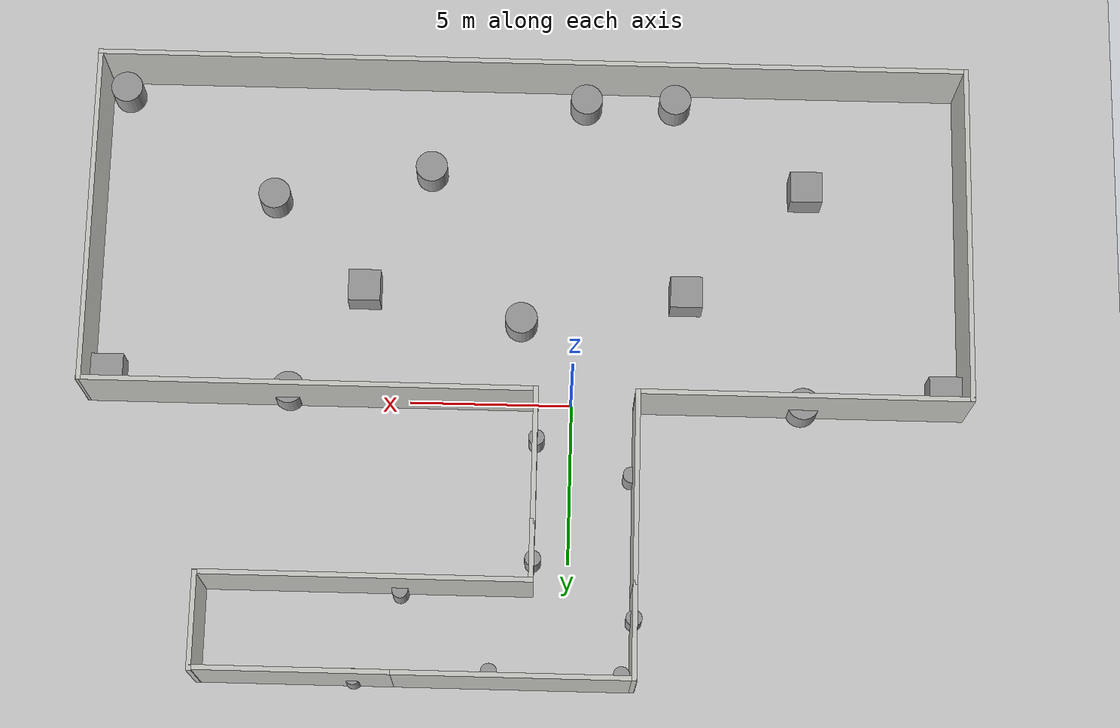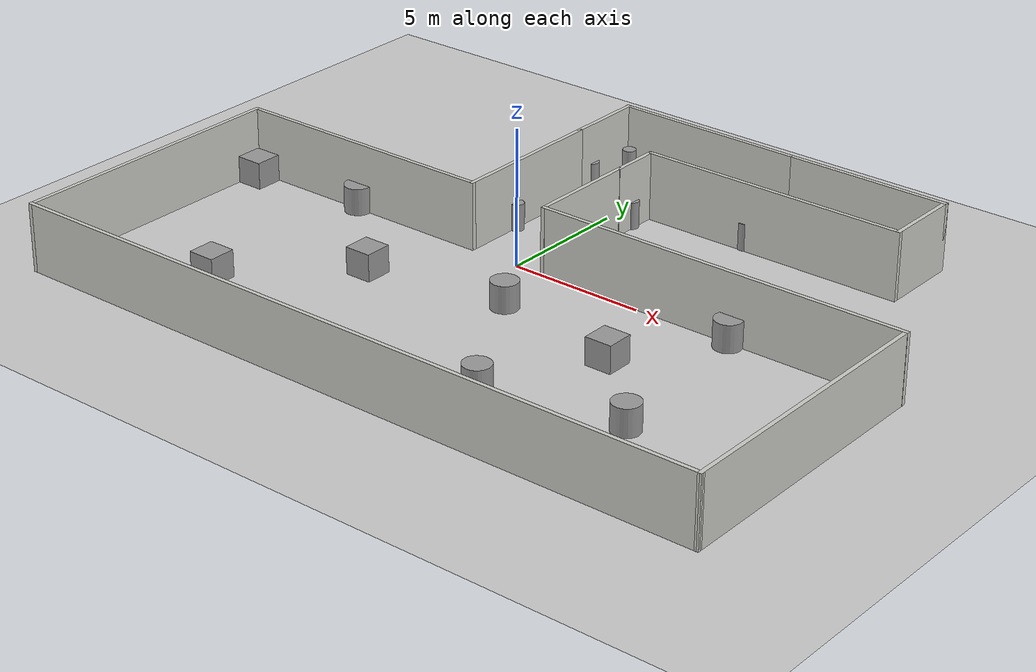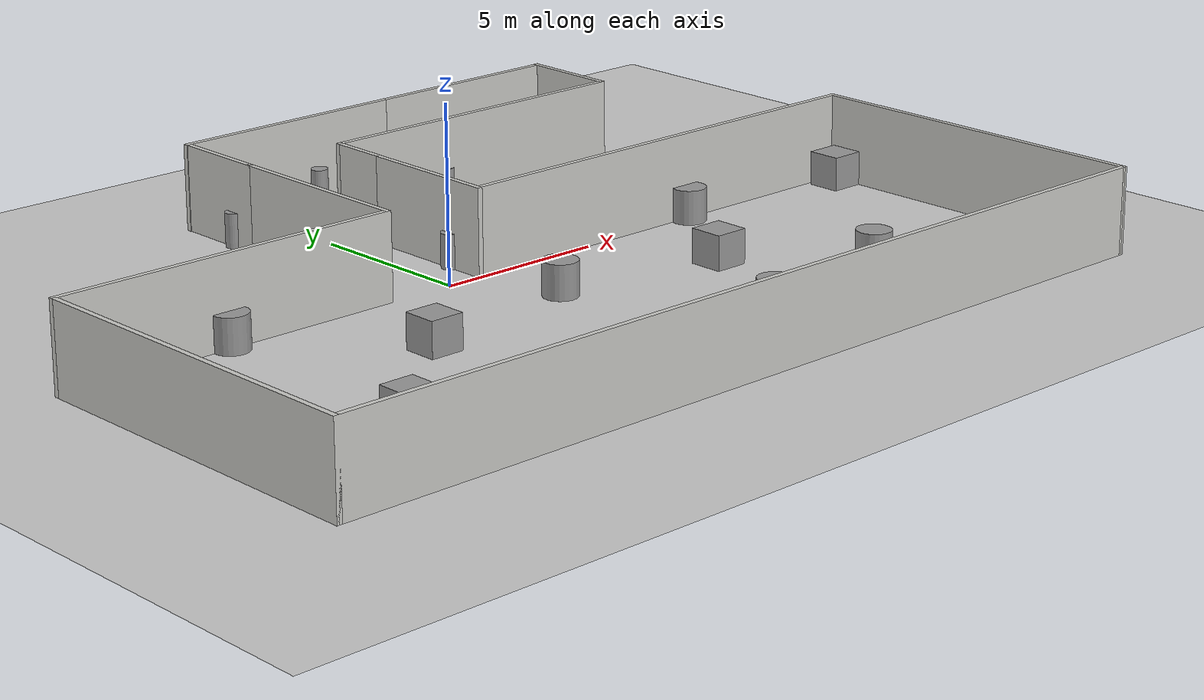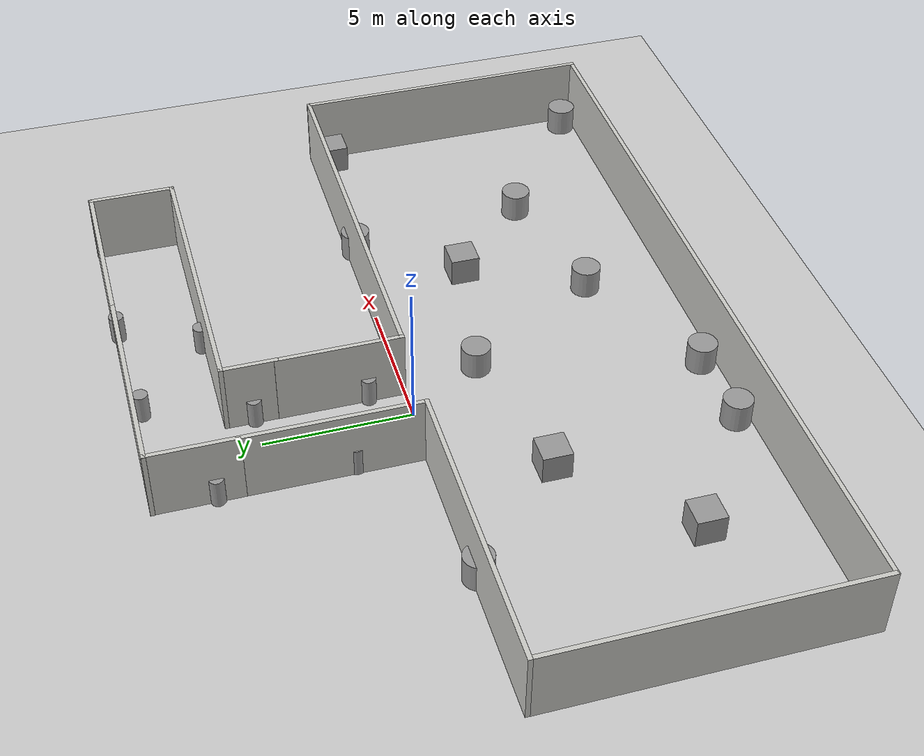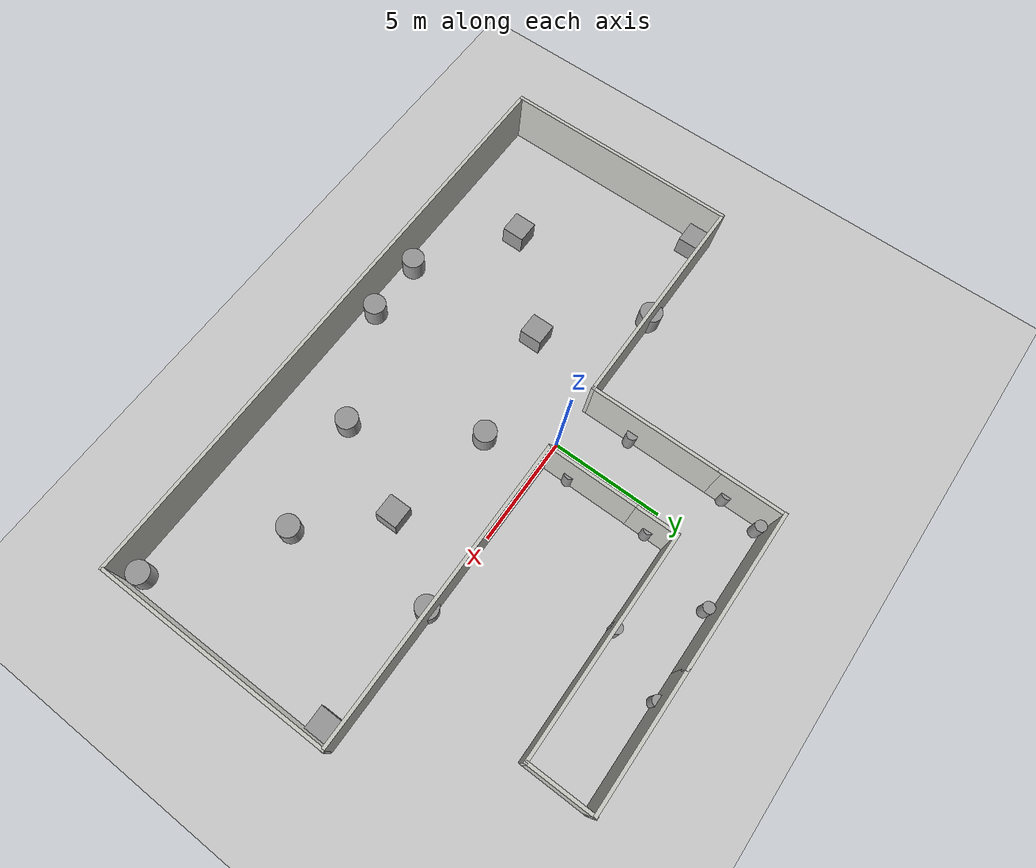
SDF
<sdf version="1.7">
 <world name="default">
  <light name="sun" type="directional">
   <pose>0 0 10 0 -0 0</pose>
   <diffuse>0.8 0.8 0.8 1</diffuse>
   <specular>0.2 0.2 0.2 1</specular>
   <attenuation>
    <range>1000</range>
    <constant>0.9</constant>
    <linear>0.01</linear>
    <quadratic>0.001</quadratic>
   </attenuation>
   <direction>-0.5 0.1 -0.9</direction>
   <spot><inner_angle>0</inner_angle><outer_angle>0</outer_angle><falloff>0</falloff></spot>
  </light>
  <model name="ground_plane">
   <static>1</static>
   <link name="link">
    <collision name="collision">
     <geometry><plane><normal>0 0 1</normal><size>100 100</size></plane></geometry>
     <surface><friction><ode><mu>100</mu><mu2>50</mu2></ode></friction></surface>
    </collision>
    <visual name="visual">
     <cast_shadows>0</cast_shadows>
     <geometry><plane><normal>0 0 1</normal><size>100 100</size></plane></geometry>
     <material>
      <script><uri>file://media/materials/scripts/gazebo.material</uri><name>Gazebo/Grey</name></script>
     </material>
    </visual>
   </link>
  </model>
  <gravity>0 0 -9.8</gravity>
  <magnetic_field>6e-06 2.3e-05 -4.2e-05</magnetic_field>
  <atmosphere type="adiabatic"/>
  <physics type="ode">
   <max_step_size>0.001</max_step_size>
   <real_time_factor>1</real_time_factor>
   <real_time_update_rate>1000</real_time_update_rate>
  </physics>
  <scene><ambient>0.4 0.4 0.4 1</ambient><background>0.7 0.7 0.7 1</background><shadows>1</shadows></scene>
  <audio><device>default</device></audio>
  <spherical_coordinates>
   <surface_model>EARTH_WGS84</surface_model>
   <latitude_deg>0</latitude_deg>
   <longitude_deg>0</longitude_deg>
   <elevation>0</elevation>
   <heading_deg>0</heading_deg>
  </spherical_coordinates>
  <model name="Prueba_2">
   <pose>1.45514 -0.79551 0 0 -0 0</pose>
   <link name="Wall_0">
    <collision name="Wall_0_Collision">
     <geometry><box><size>3.00028 0.15 2.5</size></box></geometry>
     <pose>0 0 1.25 0 -0 0</pose>
    </collision>
    <visual name="Wall_0_Visual">
     <pose>0 0 1.25 0 -0 0</pose>
     <geometry><box><size>3.00028 0.15 2.5</size></box></geometry>
     <material>
      <script><uri>file://media/materials/scripts/gazebo.material</uri><name>Gazebo/CeilingTiled</name></script>
      <ambient>0.341176 0.890196 0.537255 1</ambient>
     </material>
     <meta><layer>0</layer></meta>
    </visual>
    <pose>-3.45021 8.15771 0 0 -0 1.5708</pose>
   </link>
   <link name="Wall_1">
    <collision name="Wall_1_Collision">
     <geometry><box><size>7.25 0.15 2.5</size></box></geometry>
     <pose>0 0 1.25 0 -0 0</pose>
    </collision>
    <visual name="Wall_1_Visual">
     <pose>0 0 1.25 0 -0 0</pose>
     <geometry><box><size>7.25 0.15 2.5</size></box></geometry>
     <material>
      <script><uri>file://media/materials/scripts/gazebo.material</uri><name>Gazebo/CeilingTiled</name></script>
      <ambient>0.341176 0.890196 0.537255 1</ambient>
     </material>
     <meta><layer>0</layer></meta>
    </visual>
    <pose>0.079675 9.58271 0 0 -0 0</pose>
   </link>
   <link name="Wall_10">
    <collision name="Wall_10_Collision">
     <geometry><box><size>10.25 0.15 2.5</size></box></geometry>
     <pose>0 0 1.25 0 -0 0</pose>
    </collision>
    <visual name="Wall_10_Visual">
     <pose>0 0 1.25 0 -0 0</pose>
     <geometry><box><size>10.25 0.15 2.5</size></box></geometry>
     <material>
      <script><uri>file://media/materials/scripts/gazebo.material</uri><name>Gazebo/CeilingTiled</name></script>
      <ambient>0.341176 0.890196 0.537255 1</ambient>
     </material>
     <meta><layer>0</layer></meta>
    </visual>
    <pose>-8.50021 0.882711 0 0 -0 3.14159</pose>
   </link>
   <link name="Wall_11">
    <collision name="Wall_11_Collision">
     <geometry><box><size>10.75 0.15 2.5</size></box></geometry>
     <pose>0 0 1.25 0 -0 0</pose>
    </collision>
    <visual name="Wall_11_Visual">
     <pose>0 0 1.25 0 -0 0</pose>
     <geometry><box><size>10.75 0.15 2.5</size></box></geometry>
     <material>
      <script><uri>file://media/materials/scripts/gazebo.material</uri><name>Gazebo/CeilingTiled</name></script>
      <ambient>0.341176 0.890196 0.537255 1</ambient>
     </material>
     <meta><layer>0</layer></meta>
    </visual>
    <pose>-13.5502 -4.41729 0 0 -0 -1.5708</pose>
   </link>
   <link name="Wall_12">
    <collision name="Wall_12_Collision">
     <geometry><box><size>27.25 0.15 2.5</size></box></geometry>
     <pose>0 0 1.25 0 -0 0</pose>
    </collision>
    <visual name="Wall_12_Visual">
     <pose>0 0 1.25 0 -0 0</pose>
     <geometry><box><size>27.25 0.15 2.5</size></box></geometry>
     <material>
      <script><uri>file://media/materials/scripts/gazebo.material</uri><name>Gazebo/CeilingTiled</name></script>
      <ambient>0.341176 0.890196 0.537255 1</ambient>
     </material>
     <meta><layer>0</layer></meta>
    </visual>
    <pose>-0.000211 -9.71729 0 0 -0 0</pose>
   </link>
   <link name="Wall_13">
    <collision name="Wall_13_Collision">
     <geometry><box><size>10.7402 0.15 2.5</size></box></geometry>
     <pose>0 0 1.25 0 -0 0</pose>
    </collision>
    <visual name="Wall_13_Visual">
     <pose>0 0 1.25 0 -0 0</pose>
     <geometry><box><size>10.7402 0.15 2.5</size></box></geometry>
     <material>
      <script><uri>file://media/materials/scripts/gazebo.material</uri><name>Gazebo/CeilingTiled</name></script>
      <ambient>0.341176 0.890196 0.537255 1</ambient>
     </material>
     <meta><layer>0</layer></meta>
    </visual>
    <pose>13.5198 -4.42229 0 0 -0 1.57646</pose>
   </link>
   <link name="Wall_14">
    <collision name="Wall_14_Collision">
     <geometry><box><size>14 0.15 2.5</size></box></geometry>
     <pose>0 0 1.25 0 -0 0</pose>
    </collision>
    <visual name="Wall_14_Visual">
     <pose>0 0 1.25 0 -0 0</pose>
     <geometry><box><size>14 0.15 2.5</size></box></geometry>
     <material>
      <script><uri>file://media/materials/scripts/gazebo.material</uri><name>Gazebo/CeilingTiled</name></script>
      <ambient>0.341176 0.890196 0.537255 1</ambient>
     </material>
     <meta><layer>0</layer></meta>
    </visual>
    <pose>6.57479 0.872711 0 0 -0 3.14159</pose>
   </link>
   <link name="Wall_2">
    <collision name="Wall_2_Collision">
     <geometry><box><size>6.11285 0.15 2.5</size></box></geometry>
     <pose>0 0 1.25 0 -0 0</pose>
    </collision>
    <visual name="Wall_2_Visual">
     <pose>0 0 1.25 0 -0 0</pose>
     <geometry><box><size>6.11285 0.15 2.5</size></box></geometry>
     <material>
      <script><uri>file://media/materials/scripts/gazebo.material</uri><name>Gazebo/CeilingTiled</name></script>
      <ambient>0.341176 0.890196 0.537255 1</ambient>
     </material>
     <meta><layer>0</layer></meta>
    </visual>
    <pose>6.63122 9.58271 0 0 -0 0</pose>
   </link>
   <link name="Wall_3">
    <collision name="Wall_3_Collision">
     <geometry><box><size>3 0.15 2.5</size></box></geometry>
     <pose>0 0 1.25 0 -0 0</pose>
    </collision>
    <visual name="Wall_3_Visual">
     <pose>0 0 1.25 0 -0 0</pose>
     <geometry><box><size>3 0.15 2.5</size></box></geometry>
     <material>
      <script><uri>file://media/materials/scripts/gazebo.material</uri><name>Gazebo/CeilingTiled</name></script>
      <ambient>0.341176 0.890196 0.537255 1</ambient>
     </material>
     <meta><layer>0</layer></meta>
    </visual>
    <pose>9.61264 8.17783 0 0 -0 -1.5708</pose>
   </link>
   <link name="Wall_4">
    <collision name="Wall_4_Collision">
     <geometry><box><size>10.1129 0.15 2.5</size></box></geometry>
     <pose>0 0 1.25 0 -0 0</pose>
    </collision>
    <visual name="Wall_4_Visual">
     <pose>0 0 1.25 0 -0 0</pose>
     <geometry><box><size>10.1129 0.15 2.5</size></box></geometry>
     <material>
      <script><uri>file://media/materials/scripts/gazebo.material</uri><name>Gazebo/CeilingTiled</name></script>
      <ambient>0.341176 0.890196 0.537255 1</ambient>
     </material>
     <meta><layer>0</layer></meta>
    </visual>
    <pose>4.63122 6.73271 0 0 -0 3.14159</pose>
   </link>
   <link name="Wall_5">
    <collision name="Wall_5_Collision">
     <geometry><box><size>1.92 0.15 2.5</size></box></geometry>
     <pose>0 0 1.25 0 -0 0</pose>
    </collision>
    <visual name="Wall_5_Visual">
     <pose>0 0 1.25 0 -0 0</pose>
     <geometry><box><size>1.92 0.15 2.5</size></box></geometry>
     <material>
      <script><uri>file://media/materials/scripts/gazebo.material</uri><name>Gazebo/CeilingTiled</name></script>
      <ambient>0.341176 0.890196 0.537255 1</ambient>
     </material>
     <meta><layer>0</layer></meta>
    </visual>
    <pose>-0.350211 5.84771 0 0 -0 -1.5708</pose>
   </link>
   <link name="Wall_6">
    <collision name="Wall_6_Collision">
     <geometry><box><size>4.25 0.15 2.5</size></box></geometry>
     <pose>0 0 1.25 0 -0 0</pose>
    </collision>
    <visual name="Wall_6_Visual">
     <pose>0 0 1.25 0 -0 0</pose>
     <geometry><box><size>4.25 0.15 2.5</size></box></geometry>
     <material>
      <script><uri>file://media/materials/scripts/gazebo.material</uri><name>Gazebo/CeilingTiled</name></script>
      <ambient>0.341176 0.890196 0.537255 1</ambient>
     </material>
     <meta><layer>0</layer></meta>
    </visual>
    <pose>-0.360211 2.91271 0 0 -0 -1.5708</pose>
   </link>
   <link name="Wall_8">
    <collision name="Wall_8_Collision">
     <geometry><box><size>6 0.15 2.5</size></box></geometry>
     <pose>0 0 1.25 0 -0 0</pose>
    </collision>
    <visual name="Wall_8_Visual">
     <pose>0 0 1.25 0 -0 0</pose>
     <geometry><box><size>6 0.15 2.5</size></box></geometry>
     <material>
      <script><uri>file://media/materials/scripts/gazebo.material</uri><name>Gazebo/CeilingTiled</name></script>
      <ambient>0.341176 0.890196 0.537255 1</ambient>
     </material>
     <meta><layer>0</layer></meta>
    </visual>
    <pose>-3.45021 3.80771 0 0 -0 -1.5708</pose>
   </link>
   <static>1</static>
  </model>
  <model name="unit_cylinder_clone">
   <pose>-1.67321 8.46533 0.49999 0 0 -0.141384</pose>
   <link name="link">
    <inertial>
     <mass>1</mass>
     <inertia><ixx>0.145833</ixx><ixy>0</ixy><ixz>0</ixz><iyy>0.145833</iyy><iyz>0</iyz><izz>0.125</izz></inertia>
    </inertial>
    <collision name="collision">
     <geometry><cylinder><radius>0.246869</radius><length>1</length></cylinder></geometry>
    </collision>
    <visual name="visual">
     <geometry><cylinder><radius>0.246869</radius><length>1</length></cylinder></geometry>
     <material>
      <script><name>Gazebo/Grey</name><uri>file://media/materials/scripts/gazebo.material</uri></script>
     </material>
    </visual>
   </link>
  </model>
  <model name="unit_cylinder_clone_0">
   <pose>2.30436 8.46532 0.499999 0 -0 1.2e-05</pose>
   <link name="link">
    <inertial>
     <mass>1</mass>
     <inertia><ixx>0.145833</ixx><ixy>0</ixy><ixz>0</ixz><iyy>0.145833</iyy><iyz>0</iyz><izz>0.125</izz></inertia>
    </inertial>
    <collision name="collision">
     <geometry><cylinder><radius>0.246869</radius><length>1</length></cylinder></geometry>
    </collision>
    <visual name="visual">
     <geometry><cylinder><radius>0.246869</radius><length>1</length></cylinder></geometry>
     <material>
      <script><name>Gazebo/Grey</name><uri>file://media/materials/scripts/gazebo.material</uri></script>
     </material>
    </visual>
   </link>
  </model>
  <model name="unit_cylinder_clone_1">
   <pose>5.04557 6.06682 0.5 -0 -0 -5e-06</pose>
   <link name="link">
    <inertial>
     <mass>1</mass>
     <inertia><ixx>0.145833</ixx><ixy>0</ixy><ixz>0</ixz><iyy>0.145833</iyy><iyz>0</iyz><izz>0.125</izz></inertia>
    </inertial>
    <collision name="collision">
     <geometry><cylinder><radius>0.246869</radius><length>1</length></cylinder></geometry>
    </collision>
    <visual name="visual">
     <geometry><cylinder><radius>0.246869</radius><length>1</length></cylinder></geometry>
     <material>
      <script><name>Gazebo/Grey</name><uri>file://media/materials/scripts/gazebo.material</uri></script>
     </material>
    </visual>
   </link>
  </model>
  <model name="unit_cylinder_clone_2">
   <pose>6.3631 8.71796 0.499998 -1e-06 1e-06 -5e-06</pose>
   <link name="link">
    <inertial>
     <mass>1</mass>
     <inertia><ixx>0.145833</ixx><ixy>0</ixy><ixz>0</ixz><iyy>0.145833</iyy><iyz>0</iyz><izz>0.125</izz></inertia>
    </inertial>
    <collision name="collision">
     <geometry><cylinder><radius>0.246869</radius><length>1</length></cylinder></geometry>
    </collision>
    <visual name="visual">
     <geometry><cylinder><radius>0.246869</radius><length>1</length></cylinder></geometry>
     <material>
      <script><name>Gazebo/Grey</name><uri>file://media/materials/scripts/gazebo.material</uri></script>
     </material>
    </visual>
   </link>
  </model>
  <model name="unit_cylinder_clone_3">
   <pose>-1.87125 2.33404 0.5 -0 -0 -3e-06</pose>
   <link name="link">
    <inertial>
     <mass>1</mass>
     <inertia><ixx>0.145833</ixx><ixy>0</ixy><ixz>0</ixz><iyy>0.145833</iyy><iyz>0</iyz><izz>0.125</izz></inertia>
    </inertial>
    <collision name="collision">
     <geometry><cylinder><radius>0.246869</radius><length>1</length></cylinder></geometry>
    </collision>
    <visual name="visual">
     <geometry><cylinder><radius>0.246869</radius><length>1</length></cylinder></geometry>
     <material>
      <script><name>Gazebo/Grey</name><uri>file://media/materials/scripts/gazebo.material</uri></script>
     </material>
    </visual>
   </link>
  </model>
  <model name="unit_cylinder_clone_4">
   <pose>1.0684 4.9987 0.499992 1e-06 0 -8e-06</pose>
   <link name="link">
    <inertial>
     <mass>1</mass>
     <inertia><ixx>0.145833</ixx><ixy>0</ixy><ixz>0</ixz><iyy>0.145833</iyy><iyz>0</iyz><izz>0.125</izz></inertia>
    </inertial>
    <collision name="collision">
     <geometry><cylinder><radius>0.246869</radius><length>1</length></cylinder></geometry>
    </collision>
    <visual name="visual">
     <geometry><cylinder><radius>0.246869</radius><length>1</length></cylinder></geometry>
     <material>
      <script><name>Gazebo/Grey</name><uri>file://media/materials/scripts/gazebo.material</uri></script>
     </material>
    </visual>
   </link>
  </model>
  <model name="unit_cylinder_clone_5">
   <pose>-2.02362 6.74779 0.499996 1e-06 -0 0.000364</pose>
   <link name="link">
    <inertial>
     <mass>1</mass>
     <inertia><ixx>0.145833</ixx><ixy>0</ixy><ixz>0</ixz><iyy>0.145833</iyy><iyz>0</iyz><izz>0.125</izz></inertia>
    </inertial>
    <collision name="collision">
     <geometry><cylinder><radius>0.246869</radius><length>1</length></cylinder></geometry>
    </collision>
    <visual name="visual">
     <geometry><cylinder><radius>0.246869</radius><length>1</length></cylinder></geometry>
     <material>
      <script><name>Gazebo/Grey</name><uri>file://media/materials/scripts/gazebo.material</uri></script>
     </material>
    </visual>
   </link>
  </model>
  <model name="unit_cylinder_clone_6">
   <pose>1.04913 1.22877 0.49999 0 -0 -4e-06</pose>
   <link name="link">
    <inertial>
     <mass>1</mass>
     <inertia><ixx>0.145833</ixx><ixy>0</ixy><ixz>0</ixz><iyy>0.145833</iyy><iyz>0</iyz><izz>0.125</izz></inertia>
    </inertial>
    <collision name="collision">
     <geometry><cylinder><radius>0.246869</radius><length>1</length></cylinder></geometry>
    </collision>
    <visual name="visual">
     <geometry><cylinder><radius>0.246869</radius><length>1</length></cylinder></geometry>
     <material>
      <script><name>Gazebo/Grey</name><uri>file://media/materials/scripts/gazebo.material</uri></script>
     </material>
    </visual>
   </link>
  </model>
  <model name="unit_box">
   <pose>-11.52 -0.517333 0.499995 1e-05 -0 -4e-06</pose>
   <link name="link">
    <inertial>
     <mass>1</mass>
     <inertia>
      <ixx>0.166667</ixx>
      <ixy>0</ixy>
      <ixz>0</ixz>
      <iyy>0.166667</iyy>
      <iyz>0</iyz>
      <izz>0.166667</izz>
     </inertia>
    </inertial>
    <collision name="collision"><geometry><box><size>1 1 1</size></box></geometry></collision>
    <visual name="visual">
     <geometry><box><size>1 1 1</size></box></geometry>
     <material>
      <script><name>Gazebo/Grey</name><uri>file://media/materials/scripts/gazebo.material</uri></script>
     </material>
    </visual>
   </link>
  </model>
  <model name="unit_box_0">
   <pose>14.3735 -0.601411 0.499996 0 7e-06 0.00498</pose>
   <link name="link">
    <inertial>
     <mass>1</mass>
     <inertia>
      <ixx>0.166667</ixx>
      <ixy>0</ixy>
      <ixz>0</ixz>
      <iyy>0.166667</iyy>
      <iyz>0</iyz>
      <izz>0.166667</izz>
     </inertia>
    </inertial>
    <collision name="collision"><geometry><box><size>1 1 1</size></box></geometry></collision>
    <visual name="visual">
     <geometry><box><size>1 1 1</size></box></geometry>
     <material>
      <script><name>Gazebo/Grey</name><uri>file://media/materials/scripts/gazebo.material</uri></script>
     </material>
    </visual>
   </link>
  </model>
  <model name="unit_box_1">
   <pose>-7.24515 -7.10668 0.499995 0 -1e-05 0</pose>
   <link name="link">
    <inertial>
     <mass>1</mass>
     <inertia>
      <ixx>0.166667</ixx>
      <ixy>0</ixy>
      <ixz>0</ixz>
      <iyy>0.166667</iyy>
      <iyz>0</iyz>
      <izz>0.166667</izz>
     </inertia>
    </inertial>
    <collision name="collision"><geometry><box><size>1 1 1</size></box></geometry></collision>
    <visual name="visual">
     <geometry><box><size>1 1 1</size></box></geometry>
     <material>
      <script><name>Gazebo/Grey</name><uri>file://media/materials/scripts/gazebo.material</uri></script>
     </material>
    </visual>
   </link>
  </model>
  <model name="unit_box_2">
   <pose>6.52829 -3.53058 0.499995 -1e-05 -0 0</pose>
   <link name="link">
    <inertial>
     <mass>1</mass>
     <inertia>
      <ixx>0.166667</ixx>
      <ixy>0</ixy>
      <ixz>0</ixz>
      <iyy>0.166667</iyy>
      <iyz>0</iyz>
      <izz>0.166667</izz>
     </inertia>
    </inertial>
    <collision name="collision"><geometry><box><size>1 1 1</size></box></geometry></collision>
    <visual name="visual">
     <geometry><box><size>1 1 1</size></box></geometry>
     <material>
      <script><name>Gazebo/Grey</name><uri>file://media/materials/scripts/gazebo.material</uri></script>
     </material>
    </visual>
   </link>
  </model>
  <model name="unit_cylinder_0">
   <pose>-7.1336 -0.040299 0.499992 -3e-06 2e-06 0</pose>
   <link name="link">
    <inertial>
     <mass>1</mass>
     <inertia><ixx>0.145833</ixx><ixy>0</ixy><ixz>0</ixz><iyy>0.145833</iyy><iyz>0</iyz><izz>0.125</izz></inertia>
    </inertial>
    <collision name="collision">
     <geometry><cylinder><radius>0.5</radius><length>1</length></cylinder></geometry>
    </collision>
    <visual name="visual">
     <geometry><cylinder><radius>0.5</radius><length>1</length></cylinder></geometry>
     <material>
      <script><name>Gazebo/Grey</name><uri>file://media/materials/scripts/gazebo.material</uri></script>
     </material>
    </visual>
   </link>
  </model>
  <model name="unit_cylinder_1">
   <pose>8.73801 -0.172837 0.499998 3e-06 -2e-06 0</pose>
   <link name="link">
    <inertial>
     <mass>1</mass>
     <inertia><ixx>0.145833</ixx><ixy>0</ixy><ixz>0</ixz><iyy>0.145833</iyy><iyz>0</iyz><izz>0.125</izz></inertia>
    </inertial>
    <collision name="collision">
     <geometry><cylinder><radius>0.5</radius><length>1</length></cylinder></geometry>
    </collision>
    <visual name="visual">
     <geometry><cylinder><radius>0.5</radius><length>1</length></cylinder></geometry>
     <material>
      <script><name>Gazebo/Grey</name><uri>file://media/materials/scripts/gazebo.material</uri></script>
     </material>
    </visual>
   </link>
  </model>
  <model name="unit_cylinder_2">
   <pose>-0.28122 -9.88105 0.499993 -4e-06 -2e-06 -0</pose>
   <link name="link">
    <inertial>
     <mass>1</mass>
     <inertia><ixx>0.145833</ixx><ixy>0</ixy><ixz>0</ixz><iyy>0.145833</iyy><iyz>0</iyz><izz>0.125</izz></inertia>
    </inertial>
    <collision name="collision">
     <geometry><cylinder><radius>0.5</radius><length>1</length></cylinder></geometry>
    </collision>
    <visual name="visual">
     <geometry><cylinder><radius>0.5</radius><length>1</length></cylinder></geometry>
     <material>
      <script><name>Gazebo/Grey</name><uri>file://media/materials/scripts/gazebo.material</uri></script>
     </material>
    </visual>
   </link>
  </model>
  <model name="unit_cylinder_3">
   <pose>-3.09558 -9.93779 0.499996 3e-06 3e-06 -6e-06</pose>
   <link name="link">
    <inertial>
     <mass>1</mass>
     <inertia><ixx>0.145833</ixx><ixy>0</ixy><ixz>0</ixz><iyy>0.145833</iyy><iyz>0</iyz><izz>0.125</izz></inertia>
    </inertial>
    <collision name="collision">
     <geometry><cylinder><radius>0.5</radius><length>1</length></cylinder></geometry>
    </collision>
    <visual name="visual">
     <geometry><cylinder><radius>0.5</radius><length>1</length></cylinder></geometry>
     <material>
      <script><name>Gazebo/Grey</name><uri>file://media/materials/scripts/gazebo.material</uri></script>
     </material>
    </visual>
   </link>
  </model>
  <model name="unit_cylinder_4">
   <pose>14.3724 -9.93779 0.499993 -4e-06 -2e-06 -4e-06</pose>
   <link name="link">
    <inertial>
     <mass>1</mass>
     <inertia><ixx>0.145833</ixx><ixy>0</ixy><ixz>0</ixz><iyy>0.145833</iyy><iyz>0</iyz><izz>0.125</izz></inertia>
    </inertial>
    <collision name="collision">
     <geometry><cylinder><radius>0.5</radius><length>1</length></cylinder></geometry>
    </collision>
    <visual name="visual">
     <geometry><cylinder><radius>0.5</radius><length>1</length></cylinder></geometry>
     <material>
      <script><name>Gazebo/Grey</name><uri>file://media/materials/scripts/gazebo.material</uri></script>
     </material>
    </visual>
   </link>
  </model>
  <model name="unit_box_3">
   <pose>-3.51109 -3.54955 0.499995 -1e-05 -0 -0</pose>
   <link name="link">
    <inertial>
     <mass>1</mass>
     <inertia>
      <ixx>0.166667</ixx>
      <ixy>0</ixy>
      <ixz>0</ixz>
      <iyy>0.166667</iyy>
      <iyz>0</iyz>
      <izz>0.166667</izz>
     </inertia>
    </inertial>
    <collision name="collision"><geometry><box><size>1 1 1</size></box></geometry></collision>
    <visual name="visual">
     <geometry><box><size>1 1 1</size></box></geometry>
     <material>
      <script><name>Gazebo/Grey</name><uri>file://media/materials/scripts/gazebo.material</uri></script>
     </material>
    </visual>
   </link>
  </model>
  <model name="unit_cylinder">
   <pose>1.60976 -2.58362 0.499992 -3e-06 -4e-06 -0</pose>
   <link name="link">
    <inertial>
     <mass>1</mass>
     <inertia><ixx>0.145833</ixx><ixy>0</ixy><ixz>0</ixz><iyy>0.145833</iyy><iyz>0</iyz><izz>0.125</izz></inertia>
    </inertial>
    <collision name="collision">
     <geometry><cylinder><radius>0.5</radius><length>1</length></cylinder></geometry>
    </collision>
    <visual name="visual">
     <geometry><cylinder><radius>0.5</radius><length>1</length></cylinder></geometry>
     <material>
      <script><name>Gazebo/Grey</name><uri>file://media/materials/scripts/gazebo.material</uri></script>
     </material>
    </visual>
   </link>
  </model>
  <model name="unit_cylinder_5">
   <pose>4.57074 -7.50164 0.499997 3e-06 4e-06 -0</pose>
   <link name="link">
    <inertial>
     <mass>1</mass>
     <inertia><ixx>0.145833</ixx><ixy>0</ixy><ixz>0</ixz><iyy>0.145833</iyy><iyz>0</iyz><izz>0.125</izz></inertia>
    </inertial>
    <collision name="collision">
     <geometry><cylinder><radius>0.5</radius><length>1</length></cylinder></geometry>
    </collision>
    <visual name="visual">
     <geometry><cylinder><radius>0.5</radius><length>1</length></cylinder></geometry>
     <material>
      <script><name>Gazebo/Grey</name><uri>file://media/materials/scripts/gazebo.material</uri></script>
     </material>
    </visual>
   </link>
  </model>
  <model name="unit_cylinder_5_clone">
   <pose>9.4908 -6.48092 0.499997 3e-06 4e-06 -0</pose>
   <link name="link">
    <inertial>
     <mass>1</mass>
     <inertia><ixx>0.145833</ixx><ixy>0</ixy><ixz>0</ixz><iyy>0.145833</iyy><iyz>0</iyz><izz>0.125</izz></inertia>
    </inertial>
    <collision name="collision">
     <geometry><cylinder><radius>0.5</radius><length>1</length></cylinder></geometry>
    </collision>
    <visual name="visual">
     <geometry><cylinder><radius>0.5</radius><length>1</length></cylinder></geometry>
     <material>
      <script><name>Gazebo/Grey</name><uri>file://media/materials/scripts/gazebo.material</uri></script>
     </material>
    </visual>
   </link>
  </model>
 </world>
</sdf>
